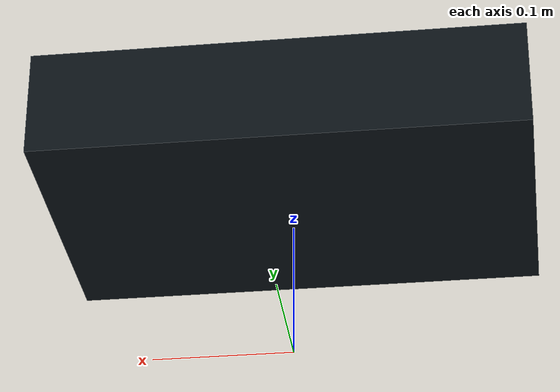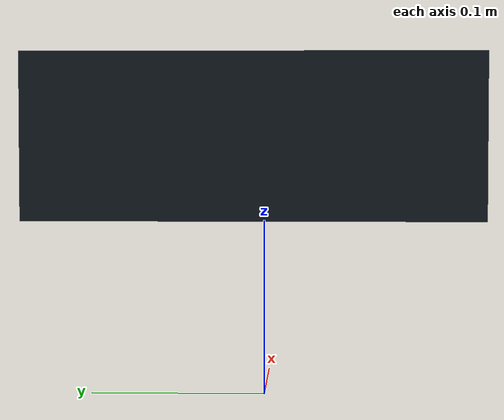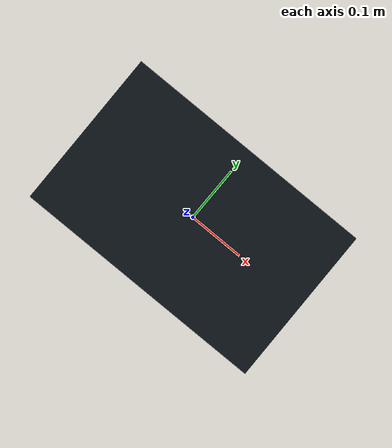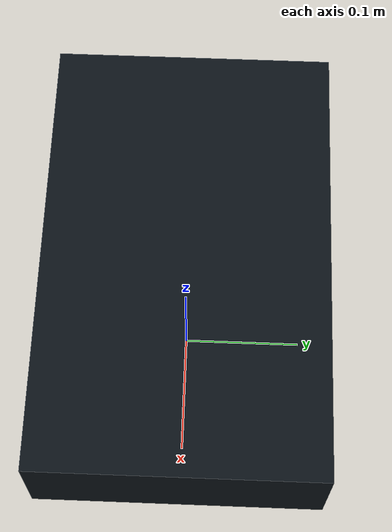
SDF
<?xml version="1.0"?>
<sdf version="1.10">
  <model name="jneo-fpv-copter">
    <pose>0 0 0.15 0 0 0</pose>
    <link name="base_link">
      <inertial>
        <mass>1.45</mass>
        <inertia>
          <ixx>0.029</ixx>
          <iyy>0.029</iyy>
          <izz>0.055</izz>
        </inertia>
      </inertial>
      <collision name="body_collision">
        <geometry>
          <box>
            <size>0.35 0.22 0.08</size>
          </box>
        </geometry>
      </collision>
      <visual name="body_visual">
        <geometry>
          <box>
            <size>0.35 0.22 0.08</size>
          </box>
        </geometry>
        <material>
          <ambient>0.05 0.08 0.10 1</ambient>
          <diffuse>0.05 0.08 0.10 1</diffuse>
        </material>
      </visual>
      <sensor name="fpv_camera" type="camera">
        <pose>0.22 0 0.03 0 0 0</pose>
        <camera>
          <horizontal_fov>1.22173</horizontal_fov>
          <image>
            <width>960</width>
            <height>540</height>
            <format>R8G8B8</format>
          </image>
          <clip>
            <near>0.05</near>
            <far>500</far>
          </clip>
        </camera>
        <always_on>true</always_on>
        <update_rate>30</update_rate>
        <topic>fpv/image</topic>
      </sensor>
      <sensor name="imu" type="imu">
        <always_on>true</always_on>
        <update_rate>200</update_rate>
        <topic>imu</topic>
      </sensor>
      <sensor name="range" type="gpu_lidar">
        <pose>0.18 0 -0.02 0 0 0</pose>
        <topic>range/scan</topic>
        <update_rate>15</update_rate>
        <lidar>
          <scan>
            <horizontal>
              <samples>64</samples>
              <min_angle>-0.6</min_angle>
              <max_angle>0.6</max_angle>
            </horizontal>
          </scan>
          <range>
            <min>0.2</min>
            <max>30.0</max>
          </range>
        </lidar>
      </sensor>
    </link>
    <plugin filename="ArduPilotPlugin" name="ardupilot_gazebo::ArduPilotPlugin">
      <fdm_addr>127.0.0.1</fdm_addr>
      <fdm_port_in>9002</fdm_port_in>
      <fdm_port_out>9003</fdm_port_out>
      <modelXYZToAirplaneXForwardZDown>0 0 0 3.141593 0 0</modelXYZToAirplaneXForwardZDown>
      <gazeboXYZToNED>0 0 0 3.141593 0 1.570796</gazeboXYZToNED>
    </plugin>
  </model>
</sdf>
